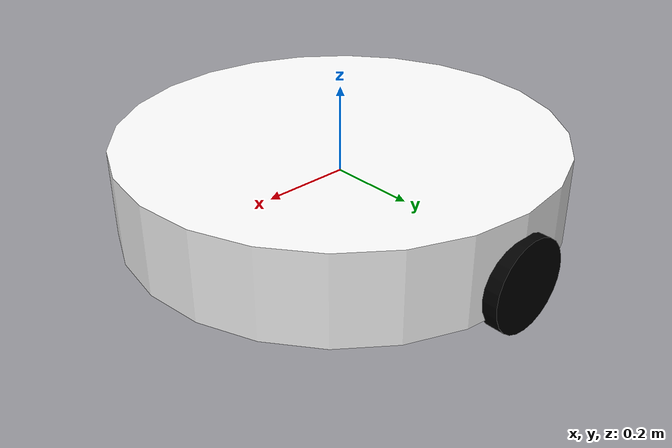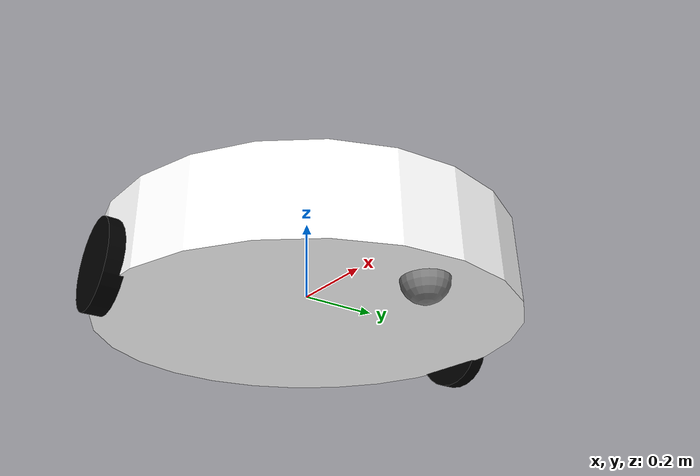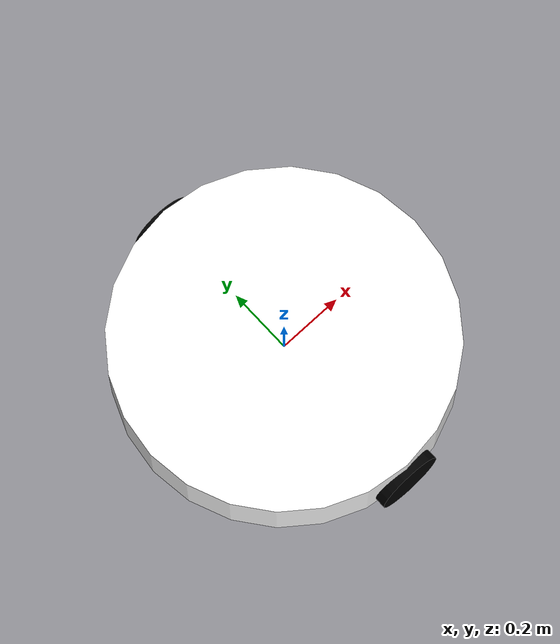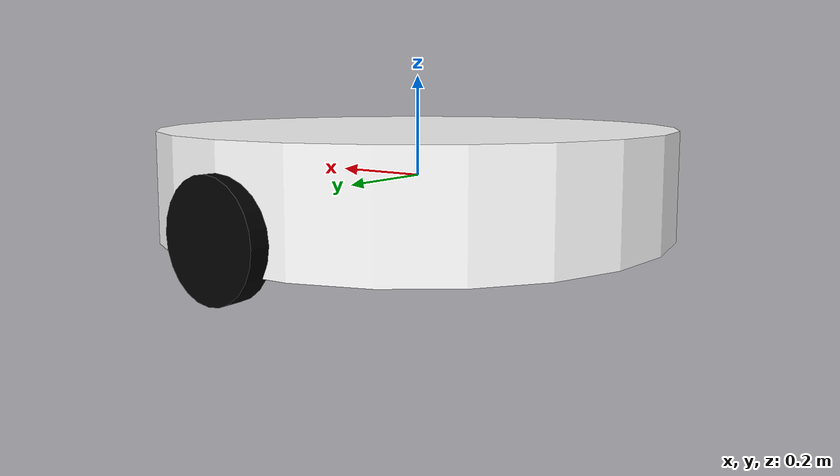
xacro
<?xml version="1.0" ?>
<robot name='robot' xmlns:xacro="http://ros.org/wiki/xacro">

    <xacro:include filename="$(find robot_description)/urdf/gazebo.urdf.xacro" />
    <!--xacro:include filename="$(find robot_description)/urdf/lidar.urdf.xacro" /-->
    <!--xacro:include filename="$(find robot_description)/urdf/depth.urdf.xacro" /-->

  <!-- Define robot constants -->
  <xacro:property name="base_width" value="0.31"/>
  <xacro:property name="base_radius" value="0.5"/>
  <xacro:property name="base_height" value="0.2"/>

  <xacro:property name="wheel_radius" value="0.10"/>
  <xacro:property name="wheel_width" value="0.04"/>
  <xacro:property name="wheel_ygap" value="0.025"/>
  <xacro:property name="wheel_zoff" value="0.05"/>
  <xacro:property name="wheel_xoff" value="0.12"/>
  <xacro:property name="caster_radius" value="${(wheel_radius+wheel_zoff-(base_height/2))}"/>

  <xacro:property name="caster_xoff" value="0.14"/>

  <xacro:property name="base_m" value="2"/>
  <xacro:property name="wheel_m" value="0.4"/>
  <xacro:property name="caster_m" value="1"/>

  <!-- Define robot color -->
  <material name="grey">
    <color rgba="0.5 0.5 0.5 1"/>
  </material>

  <material name="white">
    <color rgba="1 1 1 1"/>
  </material>

  <material name="black">
    <color rgba="0 0 0 1"/>
  </material>

  <!-- Robot Base -->
  <link name="base_link">
    <visual>
      <geometry>
        <cylinder radius="${base_radius}" length="${base_height}"/>
      </geometry>
      <material name="white"/>
    </visual>
    <collision>
      <geometry>
        <cylinder radius="${base_radius}" length="${base_height}"/>
      </geometry>
    </collision>

    <inertial>
      <mass value="${base_m}"/>
      <inertia ixx="${base_m / 12 * (3 * base_radius * base_radius + base_height * base_height)}" ixy="0.0" ixz="0.0" iyy="${base_m / 12 * (3 * base_radius * base_radius + base_height * base_height)}" iyz="0.0" izz="${base_m / 2 * base_radius * base_radius}"/>
    </inertial>
  </link>

  <!-- Robot Footprint -->
  <link name="base_footprint"/>

  <joint name="base_joint" type="fixed">
    <parent link="base_link"/>
    <child link="base_footprint"/>
    <origin xyz="0.0 0.0 ${-(wheel_radius+wheel_zoff)}" rpy="0 0 0"/>
  </joint>

  <!-- Wheels -->
  <xacro:macro name="wheel" params="prefix x_reflect y_reflect">
    <link name="${prefix}_link">
      <visual>
        <origin xyz="0 0 0" rpy="${pi/2} 0 0"/>
        <geometry>
            <cylinder radius="${wheel_radius}" length="${wheel_width}"/>
        </geometry>
        <material name="black"/>
      </visual>

    <collision>
      <origin xyz="0 0 0" rpy="${pi/2} 0 0"/>
      <geometry>
        <cylinder radius="${wheel_radius}" length="${wheel_width}"/>
      </geometry>
    </collision>

    <inertial>
      <mass value="${wheel_m}"/>
      <inertia ixx="${wheel_m / 12 * (3 * wheel_radius * wheel_radius + wheel_width * wheel_width)}" ixy="0.0" ixz="0.0" iyy="${wheel_m / 12 * (3 * wheel_radius * wheel_radius + wheel_width * wheel_width)}" iyz="0.0" izz="${wheel_m / 2 * wheel_radius * wheel_radius}"/>
    </inertial>
    </link>

    <joint name="${prefix}_joint" type="continuous">
      <parent link="base_link"/>
      <child link="${prefix}_link"/>
      <origin xyz="0 ${y_reflect * base_radius} ${-wheel_zoff}" rpy="0 0 0"/>
      <axis xyz="0 1 0"/>
    </joint>
  </xacro:macro>

  <xacro:wheel prefix="drivewhl_l" x_reflect="-1" y_reflect="1" />
  <xacro:wheel prefix="drivewhl_r" x_reflect="-1" y_reflect="-1" />

  <!-- Caster Wheel -->
  <link name="front_caster">
    <visual>
      <geometry>
        <sphere radius="${caster_radius}"/>
      </geometry>
      <material name="grey"/>
    </visual>

    <collision>
      <geometry>
        <sphere radius="${caster_radius}"/>
      </geometry>
    </collision>

    <inertial>
      <mass value="${caster_m}"/>
      <inertia ixx="${caster_m / 3 * 2 * caster_radius * caster_radius}" ixy="0.0" ixz="0.0" iyy="${caster_m / 3 * 2 * caster_radius * caster_radius}" iyz="0.0" izz="${caster_m / 3 * 2 * caster_radius * caster_radius}"/>
    </inertial>
  </link>

  <joint name="caster_joint" type="fixed">
    <parent link="base_link"/>
    <child link="front_caster"/>
    <origin xyz="${base_radius * 0.8} 0.0 ${-(base_height/2)}" rpy="0 0 0"/>
  </joint>
</robot>
